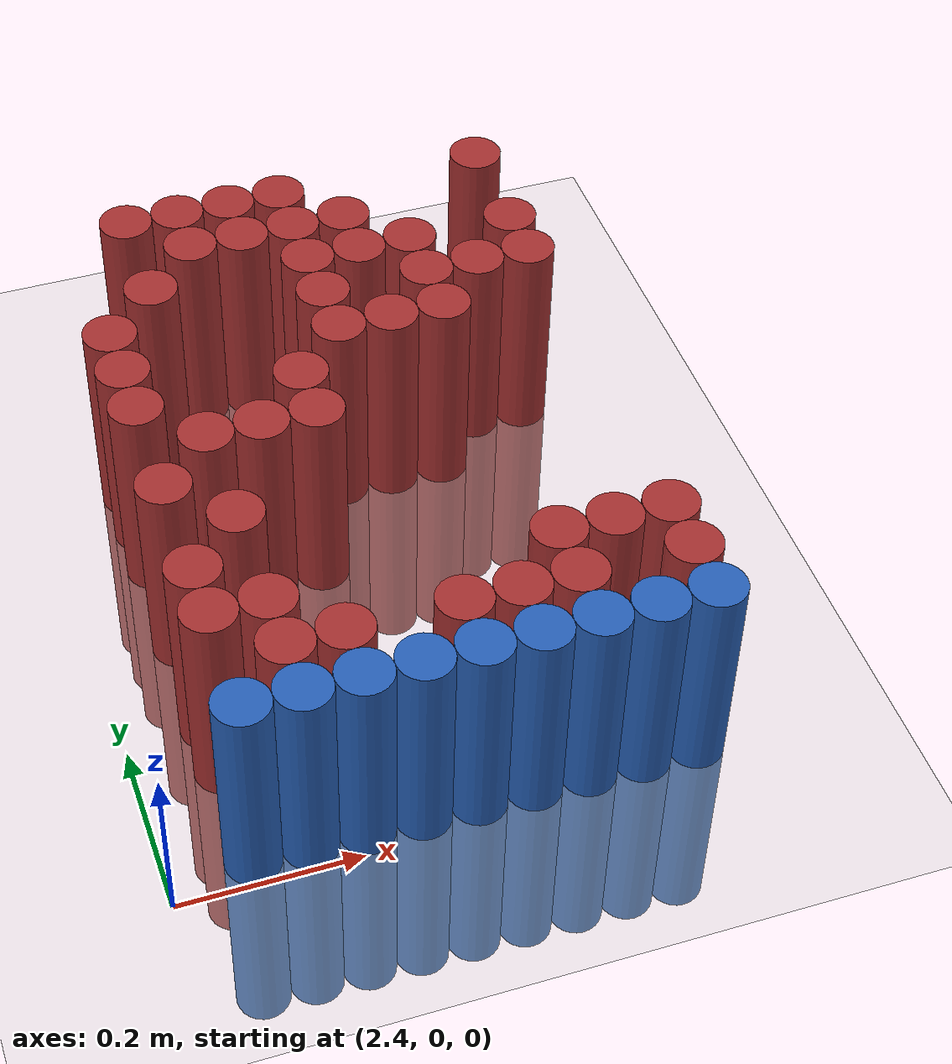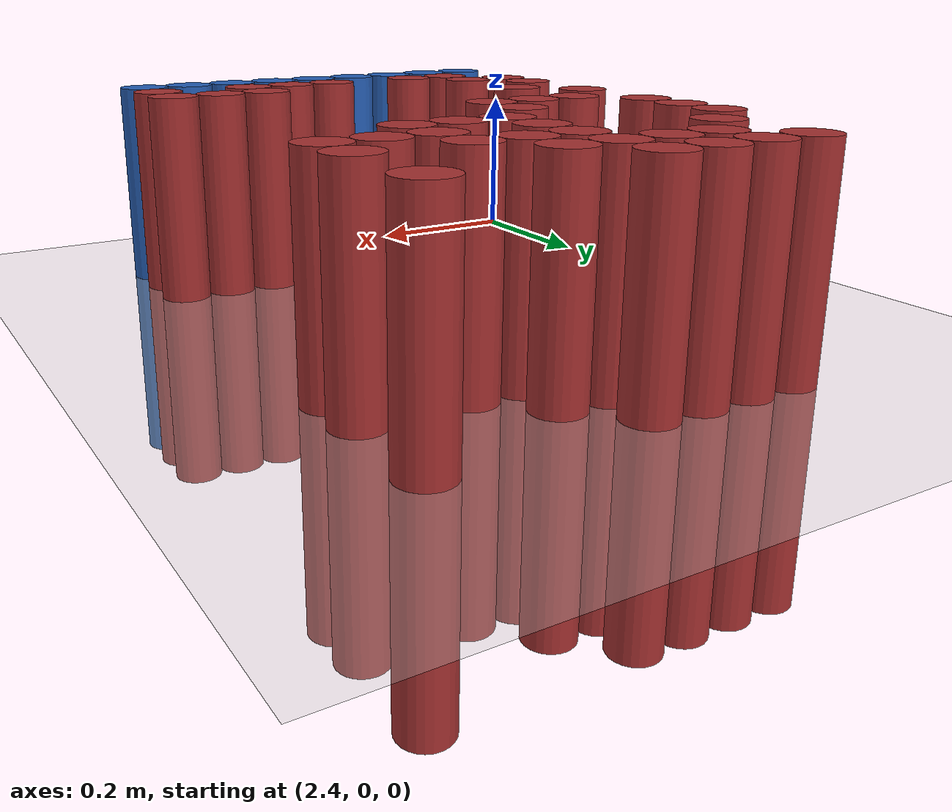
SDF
<sdf version="1.6">
 <world name="default">
  <model name="ground_plane">
   <static>1</static>
   <link name="link">
    <collision name="collision">
     <geometry><plane><normal>0 0 1</normal><size>100 100</size></plane></geometry>
     <surface><friction><ode><mu>100</mu><mu2>50</mu2></ode></friction></surface>
    </collision>
    <visual name="visual">
     <cast_shadows>0</cast_shadows>
     <geometry><plane><normal>0 0 1</normal><size>100 100</size></plane></geometry>
     <material>
      <script><uri>file://media/materials/scripts/gazebo.material</uri><name>Gazebo/Grey</name></script>
     </material>
    </visual>
   </link>
  </model>
  <model name="unit_cylinder_212">
   <static>1</static>
   <pose>2.550000 0.750000 0.000000 0.000000 0.000000 0.000000</pose>
   <link name="link">
    <inertial>
     <mass>1</mass>
     <inertia><ixx>0.145833</ixx><ixy>0</ixy><ixz>0</ixz><iyy>0.145833</iyy><iyz>0</iyz><izz>0.125</izz></inertia>
    </inertial>
    <collision name="collision">
     <geometry><cylinder><radius>0.030000</radius><length>0.5</length></cylinder></geometry>
    </collision>
    <visual name="visual">
     <geometry><cylinder><radius>0.030000</radius><length>0.5</length></cylinder></geometry>
     <material>
      <ambient>0.648000 0.192000 0.192000 1</ambient>
      <diffuse>0.648000 0.192000 0.192000 1</diffuse>
     </material>
     <material>
      <script><name>Gazebo/Grey</name><uri>file://media/materials/scripts/gazebo.material</uri></script>
     </material>
    </visual>
   </link>
  </model>
  <model name="unit_cylinder_213">
   <static>1</static>
   <pose>2.610000 0.750000 0.000000 0.000000 0.000000 0.000000</pose>
   <link name="link">
    <inertial>
     <mass>1</mass>
     <inertia><ixx>0.145833</ixx><ixy>0</ixy><ixz>0</ixz><iyy>0.145833</iyy><iyz>0</iyz><izz>0.125</izz></inertia>
    </inertial>
    <collision name="collision">
     <geometry><cylinder><radius>0.030000</radius><length>0.5</length></cylinder></geometry>
    </collision>
    <visual name="visual">
     <geometry><cylinder><radius>0.030000</radius><length>0.5</length></cylinder></geometry>
     <material>
      <ambient>0.648000 0.192000 0.192000 1</ambient>
      <diffuse>0.648000 0.192000 0.192000 1</diffuse>
     </material>
     <material>
      <script><name>Gazebo/Grey</name><uri>file://media/materials/scripts/gazebo.material</uri></script>
     </material>
    </visual>
   </link>
  </model>
  <model name="unit_cylinder_214">
   <static>1</static>
   <pose>2.670000 0.750000 0.000000 0.000000 0.000000 0.000000</pose>
   <link name="link">
    <inertial>
     <mass>1</mass>
     <inertia><ixx>0.145833</ixx><ixy>0</ixy><ixz>0</ixz><iyy>0.145833</iyy><iyz>0</iyz><izz>0.125</izz></inertia>
    </inertial>
    <collision name="collision">
     <geometry><cylinder><radius>0.030000</radius><length>0.5</length></cylinder></geometry>
    </collision>
    <visual name="visual">
     <geometry><cylinder><radius>0.030000</radius><length>0.5</length></cylinder></geometry>
     <material>
      <ambient>0.648000 0.192000 0.192000 1</ambient>
      <diffuse>0.648000 0.192000 0.192000 1</diffuse>
     </material>
     <material>
      <script><name>Gazebo/Grey</name><uri>file://media/materials/scripts/gazebo.material</uri></script>
     </material>
    </visual>
   </link>
  </model>
  <model name="unit_cylinder_215">
   <static>1</static>
   <pose>2.730000 0.750000 0.000000 0.000000 0.000000 0.000000</pose>
   <link name="link">
    <inertial>
     <mass>1</mass>
     <inertia><ixx>0.145833</ixx><ixy>0</ixy><ixz>0</ixz><iyy>0.145833</iyy><iyz>0</iyz><izz>0.125</izz></inertia>
    </inertial>
    <collision name="collision">
     <geometry><cylinder><radius>0.030000</radius><length>0.5</length></cylinder></geometry>
    </collision>
    <visual name="visual">
     <geometry><cylinder><radius>0.030000</radius><length>0.5</length></cylinder></geometry>
     <material>
      <ambient>0.648000 0.192000 0.192000 1</ambient>
      <diffuse>0.648000 0.192000 0.192000 1</diffuse>
     </material>
     <material>
      <script><name>Gazebo/Grey</name><uri>file://media/materials/scripts/gazebo.material</uri></script>
     </material>
    </visual>
   </link>
  </model>
  <model name="unit_cylinder_216">
   <static>1</static>
   <pose>2.970000 0.750000 0.000000 0.000000 0.000000 0.000000</pose>
   <link name="link">
    <inertial>
     <mass>1</mass>
     <inertia><ixx>0.145833</ixx><ixy>0</ixy><ixz>0</ixz><iyy>0.145833</iyy><iyz>0</iyz><izz>0.125</izz></inertia>
    </inertial>
    <collision name="collision">
     <geometry><cylinder><radius>0.030000</radius><length>0.5</length></cylinder></geometry>
    </collision>
    <visual name="visual">
     <geometry><cylinder><radius>0.030000</radius><length>0.5</length></cylinder></geometry>
     <material>
      <ambient>0.648000 0.192000 0.192000 1</ambient>
      <diffuse>0.648000 0.192000 0.192000 1</diffuse>
     </material>
     <material>
      <script><name>Gazebo/Grey</name><uri>file://media/materials/scripts/gazebo.material</uri></script>
     </material>
    </visual>
   </link>
  </model>
  <model name="unit_cylinder_224">
   <static>1</static>
   <pose>2.610000 0.690000 0.000000 0.000000 0.000000 0.000000</pose>
   <link name="link">
    <inertial>
     <mass>1</mass>
     <inertia><ixx>0.145833</ixx><ixy>0</ixy><ixz>0</ixz><iyy>0.145833</iyy><iyz>0</iyz><izz>0.125</izz></inertia>
    </inertial>
    <collision name="collision">
     <geometry><cylinder><radius>0.030000</radius><length>0.5</length></cylinder></geometry>
    </collision>
    <visual name="visual">
     <geometry><cylinder><radius>0.030000</radius><length>0.5</length></cylinder></geometry>
     <material>
      <ambient>0.648000 0.192000 0.192000 1</ambient>
      <diffuse>0.648000 0.192000 0.192000 1</diffuse>
     </material>
     <material>
      <script><name>Gazebo/Grey</name><uri>file://media/materials/scripts/gazebo.material</uri></script>
     </material>
    </visual>
   </link>
  </model>
  <model name="unit_cylinder_225">
   <static>1</static>
   <pose>2.670000 0.690000 0.000000 0.000000 0.000000 0.000000</pose>
   <link name="link">
    <inertial>
     <mass>1</mass>
     <inertia><ixx>0.145833</ixx><ixy>0</ixy><ixz>0</ixz><iyy>0.145833</iyy><iyz>0</iyz><izz>0.125</izz></inertia>
    </inertial>
    <collision name="collision">
     <geometry><cylinder><radius>0.030000</radius><length>0.5</length></cylinder></geometry>
    </collision>
    <visual name="visual">
     <geometry><cylinder><radius>0.030000</radius><length>0.5</length></cylinder></geometry>
     <material>
      <ambient>0.648000 0.192000 0.192000 1</ambient>
      <diffuse>0.648000 0.192000 0.192000 1</diffuse>
     </material>
     <material>
      <script><name>Gazebo/Grey</name><uri>file://media/materials/scripts/gazebo.material</uri></script>
     </material>
    </visual>
   </link>
  </model>
  <model name="unit_cylinder_226">
   <static>1</static>
   <pose>2.730000 0.690000 0.000000 0.000000 0.000000 0.000000</pose>
   <link name="link">
    <inertial>
     <mass>1</mass>
     <inertia><ixx>0.145833</ixx><ixy>0</ixy><ixz>0</ixz><iyy>0.145833</iyy><iyz>0</iyz><izz>0.125</izz></inertia>
    </inertial>
    <collision name="collision">
     <geometry><cylinder><radius>0.030000</radius><length>0.5</length></cylinder></geometry>
    </collision>
    <visual name="visual">
     <geometry><cylinder><radius>0.030000</radius><length>0.5</length></cylinder></geometry>
     <material>
      <ambient>0.648000 0.192000 0.192000 1</ambient>
      <diffuse>0.648000 0.192000 0.192000 1</diffuse>
     </material>
     <material>
      <script><name>Gazebo/Grey</name><uri>file://media/materials/scripts/gazebo.material</uri></script>
     </material>
    </visual>
   </link>
  </model>
  <model name="unit_cylinder_227">
   <static>1</static>
   <pose>2.790000 0.690000 0.000000 0.000000 0.000000 0.000000</pose>
   <link name="link">
    <inertial>
     <mass>1</mass>
     <inertia><ixx>0.145833</ixx><ixy>0</ixy><ixz>0</ixz><iyy>0.145833</iyy><iyz>0</iyz><izz>0.125</izz></inertia>
    </inertial>
    <collision name="collision">
     <geometry><cylinder><radius>0.030000</radius><length>0.5</length></cylinder></geometry>
    </collision>
    <visual name="visual">
     <geometry><cylinder><radius>0.030000</radius><length>0.5</length></cylinder></geometry>
     <material>
      <ambient>0.648000 0.192000 0.192000 1</ambient>
      <diffuse>0.648000 0.192000 0.192000 1</diffuse>
     </material>
     <material>
      <script><name>Gazebo/Grey</name><uri>file://media/materials/scripts/gazebo.material</uri></script>
     </material>
    </visual>
   </link>
  </model>
  <model name="unit_cylinder_236">
   <static>1</static>
   <pose>2.550000 0.630000 0.000000 0.000000 0.000000 0.000000</pose>
   <link name="link">
    <inertial>
     <mass>1</mass>
     <inertia><ixx>0.145833</ixx><ixy>0</ixy><ixz>0</ixz><iyy>0.145833</iyy><iyz>0</iyz><izz>0.125</izz></inertia>
    </inertial>
    <collision name="collision">
     <geometry><cylinder><radius>0.030000</radius><length>0.5</length></cylinder></geometry>
    </collision>
    <visual name="visual">
     <geometry><cylinder><radius>0.030000</radius><length>0.5</length></cylinder></geometry>
     <material>
      <ambient>0.648000 0.192000 0.192000 1</ambient>
      <diffuse>0.648000 0.192000 0.192000 1</diffuse>
     </material>
     <material>
      <script><name>Gazebo/Grey</name><uri>file://media/materials/scripts/gazebo.material</uri></script>
     </material>
    </visual>
   </link>
  </model>
  <model name="unit_cylinder_237">
   <static>1</static>
   <pose>2.730000 0.630000 0.000000 0.000000 0.000000 0.000000</pose>
   <link name="link">
    <inertial>
     <mass>1</mass>
     <inertia><ixx>0.145833</ixx><ixy>0</ixy><ixz>0</ixz><iyy>0.145833</iyy><iyz>0</iyz><izz>0.125</izz></inertia>
    </inertial>
    <collision name="collision">
     <geometry><cylinder><radius>0.030000</radius><length>0.5</length></cylinder></geometry>
    </collision>
    <visual name="visual">
     <geometry><cylinder><radius>0.030000</radius><length>0.5</length></cylinder></geometry>
     <material>
      <ambient>0.648000 0.192000 0.192000 1</ambient>
      <diffuse>0.648000 0.192000 0.192000 1</diffuse>
     </material>
     <material>
      <script><name>Gazebo/Grey</name><uri>file://media/materials/scripts/gazebo.material</uri></script>
     </material>
    </visual>
   </link>
  </model>
  <model name="unit_cylinder_238">
   <static>1</static>
   <pose>2.790000 0.630000 0.000000 0.000000 0.000000 0.000000</pose>
   <link name="link">
    <inertial>
     <mass>1</mass>
     <inertia><ixx>0.145833</ixx><ixy>0</ixy><ixz>0</ixz><iyy>0.145833</iyy><iyz>0</iyz><izz>0.125</izz></inertia>
    </inertial>
    <collision name="collision">
     <geometry><cylinder><radius>0.030000</radius><length>0.5</length></cylinder></geometry>
    </collision>
    <visual name="visual">
     <geometry><cylinder><radius>0.030000</radius><length>0.5</length></cylinder></geometry>
     <material>
      <ambient>0.648000 0.192000 0.192000 1</ambient>
      <diffuse>0.648000 0.192000 0.192000 1</diffuse>
     </material>
     <material>
      <script><name>Gazebo/Grey</name><uri>file://media/materials/scripts/gazebo.material</uri></script>
     </material>
    </visual>
   </link>
  </model>
  <model name="unit_cylinder_239">
   <static>1</static>
   <pose>2.850000 0.630000 0.000000 0.000000 0.000000 0.000000</pose>
   <link name="link">
    <inertial>
     <mass>1</mass>
     <inertia><ixx>0.145833</ixx><ixy>0</ixy><ixz>0</ixz><iyy>0.145833</iyy><iyz>0</iyz><izz>0.125</izz></inertia>
    </inertial>
    <collision name="collision">
     <geometry><cylinder><radius>0.030000</radius><length>0.5</length></cylinder></geometry>
    </collision>
    <visual name="visual">
     <geometry><cylinder><radius>0.030000</radius><length>0.5</length></cylinder></geometry>
     <material>
      <ambient>0.648000 0.192000 0.192000 1</ambient>
      <diffuse>0.648000 0.192000 0.192000 1</diffuse>
     </material>
     <material>
      <script><name>Gazebo/Grey</name><uri>file://media/materials/scripts/gazebo.material</uri></script>
     </material>
    </visual>
   </link>
  </model>
  <model name="unit_cylinder_240">
   <static>1</static>
   <pose>2.970000 0.630000 0.000000 0.000000 0.000000 0.000000</pose>
   <link name="link">
    <inertial>
     <mass>1</mass>
     <inertia><ixx>0.145833</ixx><ixy>0</ixy><ixz>0</ixz><iyy>0.145833</iyy><iyz>0</iyz><izz>0.125</izz></inertia>
    </inertial>
    <collision name="collision">
     <geometry><cylinder><radius>0.030000</radius><length>0.5</length></cylinder></geometry>
    </collision>
    <visual name="visual">
     <geometry><cylinder><radius>0.030000</radius><length>0.5</length></cylinder></geometry>
     <material>
      <ambient>0.648000 0.192000 0.192000 1</ambient>
      <diffuse>0.648000 0.192000 0.192000 1</diffuse>
     </material>
     <material>
      <script><name>Gazebo/Grey</name><uri>file://media/materials/scripts/gazebo.material</uri></script>
     </material>
    </visual>
   </link>
  </model>
  <model name="unit_cylinder_246">
   <static>1</static>
   <pose>2.490000 0.570000 0.000000 0.000000 0.000000 0.000000</pose>
   <link name="link">
    <inertial>
     <mass>1</mass>
     <inertia><ixx>0.145833</ixx><ixy>0</ixy><ixz>0</ixz><iyy>0.145833</iyy><iyz>0</iyz><izz>0.125</izz></inertia>
    </inertial>
    <collision name="collision">
     <geometry><cylinder><radius>0.030000</radius><length>0.5</length></cylinder></geometry>
    </collision>
    <visual name="visual">
     <geometry><cylinder><radius>0.030000</radius><length>0.5</length></cylinder></geometry>
     <material>
      <ambient>0.648000 0.192000 0.192000 1</ambient>
      <diffuse>0.648000 0.192000 0.192000 1</diffuse>
     </material>
     <material>
      <script><name>Gazebo/Grey</name><uri>file://media/materials/scripts/gazebo.material</uri></script>
     </material>
    </visual>
   </link>
  </model>
  <model name="unit_cylinder_247">
   <static>1</static>
   <pose>2.730000 0.570000 0.000000 0.000000 0.000000 0.000000</pose>
   <link name="link">
    <inertial>
     <mass>1</mass>
     <inertia><ixx>0.145833</ixx><ixy>0</ixy><ixz>0</ixz><iyy>0.145833</iyy><iyz>0</iyz><izz>0.125</izz></inertia>
    </inertial>
    <collision name="collision">
     <geometry><cylinder><radius>0.030000</radius><length>0.5</length></cylinder></geometry>
    </collision>
    <visual name="visual">
     <geometry><cylinder><radius>0.030000</radius><length>0.5</length></cylinder></geometry>
     <material>
      <ambient>0.648000 0.192000 0.192000 1</ambient>
      <diffuse>0.648000 0.192000 0.192000 1</diffuse>
     </material>
     <material>
      <script><name>Gazebo/Grey</name><uri>file://media/materials/scripts/gazebo.material</uri></script>
     </material>
    </visual>
   </link>
  </model>
  <model name="unit_cylinder_248">
   <static>1</static>
   <pose>2.850000 0.570000 0.000000 0.000000 0.000000 0.000000</pose>
   <link name="link">
    <inertial>
     <mass>1</mass>
     <inertia><ixx>0.145833</ixx><ixy>0</ixy><ixz>0</ixz><iyy>0.145833</iyy><iyz>0</iyz><izz>0.125</izz></inertia>
    </inertial>
    <collision name="collision">
     <geometry><cylinder><radius>0.030000</radius><length>0.5</length></cylinder></geometry>
    </collision>
    <visual name="visual">
     <geometry><cylinder><radius>0.030000</radius><length>0.5</length></cylinder></geometry>
     <material>
      <ambient>0.648000 0.192000 0.192000 1</ambient>
      <diffuse>0.648000 0.192000 0.192000 1</diffuse>
     </material>
     <material>
      <script><name>Gazebo/Grey</name><uri>file://media/materials/scripts/gazebo.material</uri></script>
     </material>
    </visual>
   </link>
  </model>
  <model name="unit_cylinder_249">
   <static>1</static>
   <pose>2.910000 0.570000 0.000000 0.000000 0.000000 0.000000</pose>
   <link name="link">
    <inertial>
     <mass>1</mass>
     <inertia><ixx>0.145833</ixx><ixy>0</ixy><ixz>0</ixz><iyy>0.145833</iyy><iyz>0</iyz><izz>0.125</izz></inertia>
    </inertial>
    <collision name="collision">
     <geometry><cylinder><radius>0.030000</radius><length>0.5</length></cylinder></geometry>
    </collision>
    <visual name="visual">
     <geometry><cylinder><radius>0.030000</radius><length>0.5</length></cylinder></geometry>
     <material>
      <ambient>0.648000 0.192000 0.192000 1</ambient>
      <diffuse>0.648000 0.192000 0.192000 1</diffuse>
     </material>
     <material>
      <script><name>Gazebo/Grey</name><uri>file://media/materials/scripts/gazebo.material</uri></script>
     </material>
    </visual>
   </link>
  </model>
  <model name="unit_cylinder_250">
   <static>1</static>
   <pose>2.970000 0.570000 0.000000 0.000000 0.000000 0.000000</pose>
   <link name="link">
    <inertial>
     <mass>1</mass>
     <inertia><ixx>0.145833</ixx><ixy>0</ixy><ixz>0</ixz><iyy>0.145833</iyy><iyz>0</iyz><izz>0.125</izz></inertia>
    </inertial>
    <collision name="collision">
     <geometry><cylinder><radius>0.030000</radius><length>0.5</length></cylinder></geometry>
    </collision>
    <visual name="visual">
     <geometry><cylinder><radius>0.030000</radius><length>0.5</length></cylinder></geometry>
     <material>
      <ambient>0.648000 0.192000 0.192000 1</ambient>
      <diffuse>0.648000 0.192000 0.192000 1</diffuse>
     </material>
     <material>
      <script><name>Gazebo/Grey</name><uri>file://media/materials/scripts/gazebo.material</uri></script>
     </material>
    </visual>
   </link>
  </model>
  <model name="unit_cylinder_255">
   <static>1</static>
   <pose>2.490000 0.510000 0.000000 0.000000 0.000000 0.000000</pose>
   <link name="link">
    <inertial>
     <mass>1</mass>
     <inertia><ixx>0.145833</ixx><ixy>0</ixy><ixz>0</ixz><iyy>0.145833</iyy><iyz>0</iyz><izz>0.125</izz></inertia>
    </inertial>
    <collision name="collision">
     <geometry><cylinder><radius>0.030000</radius><length>0.5</length></cylinder></geometry>
    </collision>
    <visual name="visual">
     <geometry><cylinder><radius>0.030000</radius><length>0.5</length></cylinder></geometry>
     <material>
      <ambient>0.648000 0.192000 0.192000 1</ambient>
      <diffuse>0.648000 0.192000 0.192000 1</diffuse>
     </material>
     <material>
      <script><name>Gazebo/Grey</name><uri>file://media/materials/scripts/gazebo.material</uri></script>
     </material>
    </visual>
   </link>
  </model>
  <model name="unit_cylinder_256">
   <static>1</static>
   <pose>2.730000 0.510000 0.000000 0.000000 0.000000 0.000000</pose>
   <link name="link">
    <inertial>
     <mass>1</mass>
     <inertia><ixx>0.145833</ixx><ixy>0</ixy><ixz>0</ixz><iyy>0.145833</iyy><iyz>0</iyz><izz>0.125</izz></inertia>
    </inertial>
    <collision name="collision">
     <geometry><cylinder><radius>0.030000</radius><length>0.5</length></cylinder></geometry>
    </collision>
    <visual name="visual">
     <geometry><cylinder><radius>0.030000</radius><length>0.5</length></cylinder></geometry>
     <material>
      <ambient>0.648000 0.192000 0.192000 1</ambient>
      <diffuse>0.648000 0.192000 0.192000 1</diffuse>
     </material>
     <material>
      <script><name>Gazebo/Grey</name><uri>file://media/materials/scripts/gazebo.material</uri></script>
     </material>
    </visual>
   </link>
  </model>
  <model name="unit_cylinder_257">
   <static>1</static>
   <pose>2.790000 0.510000 0.000000 0.000000 0.000000 0.000000</pose>
   <link name="link">
    <inertial>
     <mass>1</mass>
     <inertia><ixx>0.145833</ixx><ixy>0</ixy><ixz>0</ixz><iyy>0.145833</iyy><iyz>0</iyz><izz>0.125</izz></inertia>
    </inertial>
    <collision name="collision">
     <geometry><cylinder><radius>0.030000</radius><length>0.5</length></cylinder></geometry>
    </collision>
    <visual name="visual">
     <geometry><cylinder><radius>0.030000</radius><length>0.5</length></cylinder></geometry>
     <material>
      <ambient>0.648000 0.192000 0.192000 1</ambient>
      <diffuse>0.648000 0.192000 0.192000 1</diffuse>
     </material>
     <material>
      <script><name>Gazebo/Grey</name><uri>file://media/materials/scripts/gazebo.material</uri></script>
     </material>
    </visual>
   </link>
  </model>
  <model name="unit_cylinder_258">
   <static>1</static>
   <pose>2.850000 0.510000 0.000000 0.000000 0.000000 0.000000</pose>
   <link name="link">
    <inertial>
     <mass>1</mass>
     <inertia><ixx>0.145833</ixx><ixy>0</ixy><ixz>0</ixz><iyy>0.145833</iyy><iyz>0</iyz><izz>0.125</izz></inertia>
    </inertial>
    <collision name="collision">
     <geometry><cylinder><radius>0.030000</radius><length>0.5</length></cylinder></geometry>
    </collision>
    <visual name="visual">
     <geometry><cylinder><radius>0.030000</radius><length>0.5</length></cylinder></geometry>
     <material>
      <ambient>0.648000 0.192000 0.192000 1</ambient>
      <diffuse>0.648000 0.192000 0.192000 1</diffuse>
     </material>
     <material>
      <script><name>Gazebo/Grey</name><uri>file://media/materials/scripts/gazebo.material</uri></script>
     </material>
    </visual>
   </link>
  </model>
  <model name="unit_cylinder_266">
   <static>1</static>
   <pose>2.490000 0.450000 0.000000 0.000000 0.000000 0.000000</pose>
   <link name="link">
    <inertial>
     <mass>1</mass>
     <inertia><ixx>0.145833</ixx><ixy>0</ixy><ixz>0</ixz><iyy>0.145833</iyy><iyz>0</iyz><izz>0.125</izz></inertia>
    </inertial>
    <collision name="collision">
     <geometry><cylinder><radius>0.030000</radius><length>0.5</length></cylinder></geometry>
    </collision>
    <visual name="visual">
     <geometry><cylinder><radius>0.030000</radius><length>0.5</length></cylinder></geometry>
     <material>
      <ambient>0.648000 0.192000 0.192000 1</ambient>
      <diffuse>0.648000 0.192000 0.192000 1</diffuse>
     </material>
     <material>
      <script><name>Gazebo/Grey</name><uri>file://media/materials/scripts/gazebo.material</uri></script>
     </material>
    </visual>
   </link>
  </model>
  <model name="unit_cylinder_267">
   <static>1</static>
   <pose>2.670000 0.450000 0.000000 0.000000 0.000000 0.000000</pose>
   <link name="link">
    <inertial>
     <mass>1</mass>
     <inertia><ixx>0.145833</ixx><ixy>0</ixy><ixz>0</ixz><iyy>0.145833</iyy><iyz>0</iyz><izz>0.125</izz></inertia>
    </inertial>
    <collision name="collision">
     <geometry><cylinder><radius>0.030000</radius><length>0.5</length></cylinder></geometry>
    </collision>
    <visual name="visual">
     <geometry><cylinder><radius>0.030000</radius><length>0.5</length></cylinder></geometry>
     <material>
      <ambient>0.648000 0.192000 0.192000 1</ambient>
      <diffuse>0.648000 0.192000 0.192000 1</diffuse>
     </material>
     <material>
      <script><name>Gazebo/Grey</name><uri>file://media/materials/scripts/gazebo.material</uri></script>
     </material>
    </visual>
   </link>
  </model>
  <model name="unit_cylinder_275">
   <static>1</static>
   <pose>2.550000 0.390000 0.000000 0.000000 0.000000 0.000000</pose>
   <link name="link">
    <inertial>
     <mass>1</mass>
     <inertia><ixx>0.145833</ixx><ixy>0</ixy><ixz>0</ixz><iyy>0.145833</iyy><iyz>0</iyz><izz>0.125</izz></inertia>
    </inertial>
    <collision name="collision">
     <geometry><cylinder><radius>0.030000</radius><length>0.5</length></cylinder></geometry>
    </collision>
    <visual name="visual">
     <geometry><cylinder><radius>0.030000</radius><length>0.5</length></cylinder></geometry>
     <material>
      <ambient>0.648000 0.192000 0.192000 1</ambient>
      <diffuse>0.648000 0.192000 0.192000 1</diffuse>
     </material>
     <material>
      <script><name>Gazebo/Grey</name><uri>file://media/materials/scripts/gazebo.material</uri></script>
     </material>
    </visual>
   </link>
  </model>
  <model name="unit_cylinder_276">
   <static>1</static>
   <pose>2.610000 0.390000 0.000000 0.000000 0.000000 0.000000</pose>
   <link name="link">
    <inertial>
     <mass>1</mass>
     <inertia><ixx>0.145833</ixx><ixy>0</ixy><ixz>0</ixz><iyy>0.145833</iyy><iyz>0</iyz><izz>0.125</izz></inertia>
    </inertial>
    <collision name="collision">
     <geometry><cylinder><radius>0.030000</radius><length>0.5</length></cylinder></geometry>
    </collision>
    <visual name="visual">
     <geometry><cylinder><radius>0.030000</radius><length>0.5</length></cylinder></geometry>
     <material>
      <ambient>0.648000 0.192000 0.192000 1</ambient>
      <diffuse>0.648000 0.192000 0.192000 1</diffuse>
     </material>
     <material>
      <script><name>Gazebo/Grey</name><uri>file://media/materials/scripts/gazebo.material</uri></script>
     </material>
    </visual>
   </link>
  </model>
  <model name="unit_cylinder_277">
   <static>1</static>
   <pose>2.670000 0.390000 0.000000 0.000000 0.000000 0.000000</pose>
   <link name="link">
    <inertial>
     <mass>1</mass>
     <inertia><ixx>0.145833</ixx><ixy>0</ixy><ixz>0</ixz><iyy>0.145833</iyy><iyz>0</iyz><izz>0.125</izz></inertia>
    </inertial>
    <collision name="collision">
     <geometry><cylinder><radius>0.030000</radius><length>0.5</length></cylinder></geometry>
    </collision>
    <visual name="visual">
     <geometry><cylinder><radius>0.030000</radius><length>0.5</length></cylinder></geometry>
     <material>
      <ambient>0.648000 0.192000 0.192000 1</ambient>
      <diffuse>0.648000 0.192000 0.192000 1</diffuse>
     </material>
     <material>
      <script><name>Gazebo/Grey</name><uri>file://media/materials/scripts/gazebo.material</uri></script>
     </material>
    </visual>
   </link>
  </model>
  <model name="unit_cylinder_284">
   <static>1</static>
   <pose>2.490000 0.330000 0.000000 0.000000 0.000000 0.000000</pose>
   <link name="link">
    <inertial>
     <mass>1</mass>
     <inertia><ixx>0.145833</ixx><ixy>0</ixy><ixz>0</ixz><iyy>0.145833</iyy><iyz>0</iyz><izz>0.125</izz></inertia>
    </inertial>
    <collision name="collision">
     <geometry><cylinder><radius>0.030000</radius><length>0.5</length></cylinder></geometry>
    </collision>
    <visual name="visual">
     <geometry><cylinder><radius>0.030000</radius><length>0.5</length></cylinder></geometry>
     <material>
      <ambient>0.648000 0.192000 0.192000 1</ambient>
      <diffuse>0.648000 0.192000 0.192000 1</diffuse>
     </material>
     <material>
      <script><name>Gazebo/Grey</name><uri>file://media/materials/scripts/gazebo.material</uri></script>
     </material>
    </visual>
   </link>
  </model>
  <model name="unit_cylinder_292">
   <static>1</static>
   <pose>2.550000 0.270000 0.000000 0.000000 0.000000 0.000000</pose>
   <link name="link">
    <inertial>
     <mass>1</mass>
     <inertia><ixx>0.145833</ixx><ixy>0</ixy><ixz>0</ixz><iyy>0.145833</iyy><iyz>0</iyz><izz>0.125</izz></inertia>
    </inertial>
    <collision name="collision">
     <geometry><cylinder><radius>0.030000</radius><length>0.5</length></cylinder></geometry>
    </collision>
    <visual name="visual">
     <geometry><cylinder><radius>0.030000</radius><length>0.5</length></cylinder></geometry>
     <material>
      <ambient>0.648000 0.192000 0.192000 1</ambient>
      <diffuse>0.648000 0.192000 0.192000 1</diffuse>
     </material>
     <material>
      <script><name>Gazebo/Grey</name><uri>file://media/materials/scripts/gazebo.material</uri></script>
     </material>
    </visual>
   </link>
  </model>
  <model name="unit_cylinder_298">
   <static>1</static>
   <pose>2.490000 0.210000 0.000000 0.000000 0.000000 0.000000</pose>
   <link name="link">
    <inertial>
     <mass>1</mass>
     <inertia><ixx>0.145833</ixx><ixy>0</ixy><ixz>0</ixz><iyy>0.145833</iyy><iyz>0</iyz><izz>0.125</izz></inertia>
    </inertial>
    <collision name="collision">
     <geometry><cylinder><radius>0.030000</radius><length>0.5</length></cylinder></geometry>
    </collision>
    <visual name="visual">
     <geometry><cylinder><radius>0.030000</radius><length>0.5</length></cylinder></geometry>
     <material>
      <ambient>0.648000 0.192000 0.192000 1</ambient>
      <diffuse>0.648000 0.192000 0.192000 1</diffuse>
     </material>
     <material>
      <script><name>Gazebo/Grey</name><uri>file://media/materials/scripts/gazebo.material</uri></script>
     </material>
    </visual>
   </link>
  </model>
  <model name="unit_cylinder_305">
   <static>1</static>
   <pose>2.490000 0.150000 0.000000 0.000000 0.000000 0.000000</pose>
   <link name="link">
    <inertial>
     <mass>1</mass>
     <inertia><ixx>0.145833</ixx><ixy>0</ixy><ixz>0</ixz><iyy>0.145833</iyy><iyz>0</iyz><izz>0.125</izz></inertia>
    </inertial>
    <collision name="collision">
     <geometry><cylinder><radius>0.030000</radius><length>0.5</length></cylinder></geometry>
    </collision>
    <visual name="visual">
     <geometry><cylinder><radius>0.030000</radius><length>0.5</length></cylinder></geometry>
     <material>
      <ambient>0.648000 0.192000 0.192000 1</ambient>
      <diffuse>0.648000 0.192000 0.192000 1</diffuse>
     </material>
     <material>
      <script><name>Gazebo/Grey</name><uri>file://media/materials/scripts/gazebo.material</uri></script>
     </material>
    </visual>
   </link>
  </model>
  <model name="unit_cylinder_306">
   <static>1</static>
   <pose>2.550000 0.150000 0.000000 0.000000 0.000000 0.000000</pose>
   <link name="link">
    <inertial>
     <mass>1</mass>
     <inertia><ixx>0.145833</ixx><ixy>0</ixy><ixz>0</ixz><iyy>0.145833</iyy><iyz>0</iyz><izz>0.125</izz></inertia>
    </inertial>
    <collision name="collision">
     <geometry><cylinder><radius>0.030000</radius><length>0.5</length></cylinder></geometry>
    </collision>
    <visual name="visual">
     <geometry><cylinder><radius>0.030000</radius><length>0.5</length></cylinder></geometry>
     <material>
      <ambient>0.648000 0.192000 0.192000 1</ambient>
      <diffuse>0.648000 0.192000 0.192000 1</diffuse>
     </material>
     <material>
      <script><name>Gazebo/Grey</name><uri>file://media/materials/scripts/gazebo.material</uri></script>
     </material>
    </visual>
   </link>
  </model>
  <model name="unit_cylinder_307">
   <static>1</static>
   <pose>2.850000 0.150000 0.000000 0.000000 0.000000 0.000000</pose>
   <link name="link">
    <inertial>
     <mass>1</mass>
     <inertia><ixx>0.145833</ixx><ixy>0</ixy><ixz>0</ixz><iyy>0.145833</iyy><iyz>0</iyz><izz>0.125</izz></inertia>
    </inertial>
    <collision name="collision">
     <geometry><cylinder><radius>0.030000</radius><length>0.5</length></cylinder></geometry>
    </collision>
    <visual name="visual">
     <geometry><cylinder><radius>0.030000</radius><length>0.5</length></cylinder></geometry>
     <material>
      <ambient>0.648000 0.192000 0.192000 1</ambient>
      <diffuse>0.648000 0.192000 0.192000 1</diffuse>
     </material>
     <material>
      <script><name>Gazebo/Grey</name><uri>file://media/materials/scripts/gazebo.material</uri></script>
     </material>
    </visual>
   </link>
  </model>
  <model name="unit_cylinder_308">
   <static>1</static>
   <pose>2.910000 0.150000 0.000000 0.000000 0.000000 0.000000</pose>
   <link name="link">
    <inertial>
     <mass>1</mass>
     <inertia><ixx>0.145833</ixx><ixy>0</ixy><ixz>0</ixz><iyy>0.145833</iyy><iyz>0</iyz><izz>0.125</izz></inertia>
    </inertial>
    <collision name="collision">
     <geometry><cylinder><radius>0.030000</radius><length>0.5</length></cylinder></geometry>
    </collision>
    <visual name="visual">
     <geometry><cylinder><radius>0.030000</radius><length>0.5</length></cylinder></geometry>
     <material>
      <ambient>0.648000 0.192000 0.192000 1</ambient>
      <diffuse>0.648000 0.192000 0.192000 1</diffuse>
     </material>
     <material>
      <script><name>Gazebo/Grey</name><uri>file://media/materials/scripts/gazebo.material</uri></script>
     </material>
    </visual>
   </link>
  </model>
  <model name="unit_cylinder_309">
   <static>1</static>
   <pose>2.970000 0.150000 0.000000 0.000000 0.000000 0.000000</pose>
   <link name="link">
    <inertial>
     <mass>1</mass>
     <inertia><ixx>0.145833</ixx><ixy>0</ixy><ixz>0</ixz><iyy>0.145833</iyy><iyz>0</iyz><izz>0.125</izz></inertia>
    </inertial>
    <collision name="collision">
     <geometry><cylinder><radius>0.030000</radius><length>0.5</length></cylinder></geometry>
    </collision>
    <visual name="visual">
     <geometry><cylinder><radius>0.030000</radius><length>0.5</length></cylinder></geometry>
     <material>
      <ambient>0.648000 0.192000 0.192000 1</ambient>
      <diffuse>0.648000 0.192000 0.192000 1</diffuse>
     </material>
     <material>
      <script><name>Gazebo/Grey</name><uri>file://media/materials/scripts/gazebo.material</uri></script>
     </material>
    </visual>
   </link>
  </model>
  <model name="unit_cylinder_312">
   <static>1</static>
   <pose>2.550000 0.090000 0.000000 0.000000 0.000000 0.000000</pose>
   <link name="link">
    <inertial>
     <mass>1</mass>
     <inertia><ixx>0.145833</ixx><ixy>0</ixy><ixz>0</ixz><iyy>0.145833</iyy><iyz>0</iyz><izz>0.125</izz></inertia>
    </inertial>
    <collision name="collision">
     <geometry><cylinder><radius>0.030000</radius><length>0.5</length></cylinder></geometry>
    </collision>
    <visual name="visual">
     <geometry><cylinder><radius>0.030000</radius><length>0.5</length></cylinder></geometry>
     <material>
      <ambient>0.648000 0.192000 0.192000 1</ambient>
      <diffuse>0.648000 0.192000 0.192000 1</diffuse>
     </material>
     <material>
      <script><name>Gazebo/Grey</name><uri>file://media/materials/scripts/gazebo.material</uri></script>
     </material>
    </visual>
   </link>
  </model>
  <model name="unit_cylinder_313">
   <static>1</static>
   <pose>2.610000 0.090000 0.000000 0.000000 0.000000 0.000000</pose>
   <link name="link">
    <inertial>
     <mass>1</mass>
     <inertia><ixx>0.145833</ixx><ixy>0</ixy><ixz>0</ixz><iyy>0.145833</iyy><iyz>0</iyz><izz>0.125</izz></inertia>
    </inertial>
    <collision name="collision">
     <geometry><cylinder><radius>0.030000</radius><length>0.5</length></cylinder></geometry>
    </collision>
    <visual name="visual">
     <geometry><cylinder><radius>0.030000</radius><length>0.5</length></cylinder></geometry>
     <material>
      <ambient>0.648000 0.192000 0.192000 1</ambient>
      <diffuse>0.648000 0.192000 0.192000 1</diffuse>
     </material>
     <material>
      <script><name>Gazebo/Grey</name><uri>file://media/materials/scripts/gazebo.material</uri></script>
     </material>
    </visual>
   </link>
  </model>
  <model name="unit_cylinder_314">
   <static>1</static>
   <pose>2.730000 0.090000 0.000000 0.000000 0.000000 0.000000</pose>
   <link name="link">
    <inertial>
     <mass>1</mass>
     <inertia><ixx>0.145833</ixx><ixy>0</ixy><ixz>0</ixz><iyy>0.145833</iyy><iyz>0</iyz><izz>0.125</izz></inertia>
    </inertial>
    <collision name="collision">
     <geometry><cylinder><radius>0.030000</radius><length>0.5</length></cylinder></geometry>
    </collision>
    <visual name="visual">
     <geometry><cylinder><radius>0.030000</radius><length>0.5</length></cylinder></geometry>
     <material>
      <ambient>0.648000 0.192000 0.192000 1</ambient>
      <diffuse>0.648000 0.192000 0.192000 1</diffuse>
     </material>
     <material>
      <script><name>Gazebo/Grey</name><uri>file://media/materials/scripts/gazebo.material</uri></script>
     </material>
    </visual>
   </link>
  </model>
  <model name="unit_cylinder_315">
   <static>1</static>
   <pose>2.790000 0.090000 0.000000 0.000000 0.000000 0.000000</pose>
   <link name="link">
    <inertial>
     <mass>1</mass>
     <inertia><ixx>0.145833</ixx><ixy>0</ixy><ixz>0</ixz><iyy>0.145833</iyy><iyz>0</iyz><izz>0.125</izz></inertia>
    </inertial>
    <collision name="collision">
     <geometry><cylinder><radius>0.030000</radius><length>0.5</length></cylinder></geometry>
    </collision>
    <visual name="visual">
     <geometry><cylinder><radius>0.030000</radius><length>0.5</length></cylinder></geometry>
     <material>
      <ambient>0.648000 0.192000 0.192000 1</ambient>
      <diffuse>0.648000 0.192000 0.192000 1</diffuse>
     </material>
     <material>
      <script><name>Gazebo/Grey</name><uri>file://media/materials/scripts/gazebo.material</uri></script>
     </material>
    </visual>
   </link>
  </model>
  <model name="unit_cylinder_316">
   <static>1</static>
   <pose>2.850000 0.090000 0.000000 0.000000 0.000000 0.000000</pose>
   <link name="link">
    <inertial>
     <mass>1</mass>
     <inertia><ixx>0.145833</ixx><ixy>0</ixy><ixz>0</ixz><iyy>0.145833</iyy><iyz>0</iyz><izz>0.125</izz></inertia>
    </inertial>
    <collision name="collision">
     <geometry><cylinder><radius>0.030000</radius><length>0.5</length></cylinder></geometry>
    </collision>
    <visual name="visual">
     <geometry><cylinder><radius>0.030000</radius><length>0.5</length></cylinder></geometry>
     <material>
      <ambient>0.648000 0.192000 0.192000 1</ambient>
      <diffuse>0.648000 0.192000 0.192000 1</diffuse>
     </material>
     <material>
      <script><name>Gazebo/Grey</name><uri>file://media/materials/scripts/gazebo.material</uri></script>
     </material>
    </visual>
   </link>
  </model>
  <model name="unit_cylinder_317">
   <static>1</static>
   <pose>2.970000 0.090000 0.000000 0.000000 0.000000 0.000000</pose>
   <link name="link">
    <inertial>
     <mass>1</mass>
     <inertia><ixx>0.145833</ixx><ixy>0</ixy><ixz>0</ixz><iyy>0.145833</iyy><iyz>0</iyz><izz>0.125</izz></inertia>
    </inertial>
    <collision name="collision">
     <geometry><cylinder><radius>0.030000</radius><length>0.5</length></cylinder></geometry>
    </collision>
    <visual name="visual">
     <geometry><cylinder><radius>0.030000</radius><length>0.5</length></cylinder></geometry>
     <material>
      <ambient>0.648000 0.192000 0.192000 1</ambient>
      <diffuse>0.648000 0.192000 0.192000 1</diffuse>
     </material>
     <material>
      <script><name>Gazebo/Grey</name><uri>file://media/materials/scripts/gazebo.material</uri></script>
     </material>
    </visual>
   </link>
  </model>
  <model name="unit_cylinder_335">
   <static>1</static>
   <pose>2.490000 0.030000 0.000000 0.000000 0.000000 0.000000</pose>
   <link name="link">
    <inertial>
     <mass>1</mass>
     <inertia><ixx>0.145833</ixx><ixy>0</ixy><ixz>0</ixz><iyy>0.145833</iyy><iyz>0</iyz><izz>0.125</izz></inertia>
    </inertial>
    <collision name="collision">
     <geometry><cylinder><radius>0.030000</radius><length>0.5</length></cylinder></geometry>
    </collision>
    <visual name="visual">
     <geometry><cylinder><radius>0.030000</radius><length>0.5</length></cylinder></geometry>
     <material>
      <ambient>0.152000 0.379000 0.720000 1</ambient>
      <diffuse>0.152000 0.379000 0.720000 1</diffuse>
     </material>
     <material>
      <script><name>Gazebo/Grey</name><uri>file://media/materials/scripts/gazebo.material</uri></script>
     </material>
    </visual>
   </link>
  </model>
  <model name="unit_cylinder_336">
   <static>1</static>
   <pose>2.550000 0.030000 0.000000 0.000000 0.000000 0.000000</pose>
   <link name="link">
    <inertial>
     <mass>1</mass>
     <inertia><ixx>0.145833</ixx><ixy>0</ixy><ixz>0</ixz><iyy>0.145833</iyy><iyz>0</iyz><izz>0.125</izz></inertia>
    </inertial>
    <collision name="collision">
     <geometry><cylinder><radius>0.030000</radius><length>0.5</length></cylinder></geometry>
    </collision>
    <visual name="visual">
     <geometry><cylinder><radius>0.030000</radius><length>0.5</length></cylinder></geometry>
     <material>
      <ambient>0.152000 0.379000 0.720000 1</ambient>
      <diffuse>0.152000 0.379000 0.720000 1</diffuse>
     </material>
     <material>
      <script><name>Gazebo/Grey</name><uri>file://media/materials/scripts/gazebo.material</uri></script>
     </material>
    </visual>
   </link>
  </model>
  <model name="unit_cylinder_337">
   <static>1</static>
   <pose>2.610000 0.030000 0.000000 0.000000 0.000000 0.000000</pose>
   <link name="link">
    <inertial>
     <mass>1</mass>
     <inertia><ixx>0.145833</ixx><ixy>0</ixy><ixz>0</ixz><iyy>0.145833</iyy><iyz>0</iyz><izz>0.125</izz></inertia>
    </inertial>
    <collision name="collision">
     <geometry><cylinder><radius>0.030000</radius><length>0.5</length></cylinder></geometry>
    </collision>
    <visual name="visual">
     <geometry><cylinder><radius>0.030000</radius><length>0.5</length></cylinder></geometry>
     <material>
      <ambient>0.152000 0.379000 0.720000 1</ambient>
      <diffuse>0.152000 0.379000 0.720000 1</diffuse>
     </material>
     <material>
      <script><name>Gazebo/Grey</name><uri>file://media/materials/scripts/gazebo.material</uri></script>
     </material>
    </visual>
   </link>
  </model>
  <model name="unit_cylinder_338">
   <static>1</static>
   <pose>2.670000 0.030000 0.000000 0.000000 0.000000 0.000000</pose>
   <link name="link">
    <inertial>
     <mass>1</mass>
     <inertia><ixx>0.145833</ixx><ixy>0</ixy><ixz>0</ixz><iyy>0.145833</iyy><iyz>0</iyz><izz>0.125</izz></inertia>
    </inertial>
    <collision name="collision">
     <geometry><cylinder><radius>0.030000</radius><length>0.5</length></cylinder></geometry>
    </collision>
    <visual name="visual">
     <geometry><cylinder><radius>0.030000</radius><length>0.5</length></cylinder></geometry>
     <material>
      <ambient>0.152000 0.379000 0.720000 1</ambient>
      <diffuse>0.152000 0.379000 0.720000 1</diffuse>
     </material>
     <material>
      <script><name>Gazebo/Grey</name><uri>file://media/materials/scripts/gazebo.material</uri></script>
     </material>
    </visual>
   </link>
  </model>
  <model name="unit_cylinder_339">
   <static>1</static>
   <pose>2.730000 0.030000 0.000000 0.000000 0.000000 0.000000</pose>
   <link name="link">
    <inertial>
     <mass>1</mass>
     <inertia><ixx>0.145833</ixx><ixy>0</ixy><ixz>0</ixz><iyy>0.145833</iyy><iyz>0</iyz><izz>0.125</izz></inertia>
    </inertial>
    <collision name="collision">
     <geometry><cylinder><radius>0.030000</radius><length>0.5</length></cylinder></geometry>
    </collision>
    <visual name="visual">
     <geometry><cylinder><radius>0.030000</radius><length>0.5</length></cylinder></geometry>
     <material>
      <ambient>0.152000 0.379000 0.720000 1</ambient>
      <diffuse>0.152000 0.379000 0.720000 1</diffuse>
     </material>
     <material>
      <script><name>Gazebo/Grey</name><uri>file://media/materials/scripts/gazebo.material</uri></script>
     </material>
    </visual>
   </link>
  </model>
  <model name="unit_cylinder_340">
   <static>1</static>
   <pose>2.790000 0.030000 0.000000 0.000000 0.000000 0.000000</pose>
   <link name="link">
    <inertial>
     <mass>1</mass>
     <inertia><ixx>0.145833</ixx><ixy>0</ixy><ixz>0</ixz><iyy>0.145833</iyy><iyz>0</iyz><izz>0.125</izz></inertia>
    </inertial>
    <collision name="collision">
     <geometry><cylinder><radius>0.030000</radius><length>0.5</length></cylinder></geometry>
    </collision>
    <visual name="visual">
     <geometry><cylinder><radius>0.030000</radius><length>0.5</length></cylinder></geometry>
     <material>
      <ambient>0.152000 0.379000 0.720000 1</ambient>
      <diffuse>0.152000 0.379000 0.720000 1</diffuse>
     </material>
     <material>
      <script><name>Gazebo/Grey</name><uri>file://media/materials/scripts/gazebo.material</uri></script>
     </material>
    </visual>
   </link>
  </model>
  <model name="unit_cylinder_341">
   <static>1</static>
   <pose>2.850000 0.030000 0.000000 0.000000 0.000000 0.000000</pose>
   <link name="link">
    <inertial>
     <mass>1</mass>
     <inertia><ixx>0.145833</ixx><ixy>0</ixy><ixz>0</ixz><iyy>0.145833</iyy><iyz>0</iyz><izz>0.125</izz></inertia>
    </inertial>
    <collision name="collision">
     <geometry><cylinder><radius>0.030000</radius><length>0.5</length></cylinder></geometry>
    </collision>
    <visual name="visual">
     <geometry><cylinder><radius>0.030000</radius><length>0.5</length></cylinder></geometry>
     <material>
      <ambient>0.152000 0.379000 0.720000 1</ambient>
      <diffuse>0.152000 0.379000 0.720000 1</diffuse>
     </material>
     <material>
      <script><name>Gazebo/Grey</name><uri>file://media/materials/scripts/gazebo.material</uri></script>
     </material>
    </visual>
   </link>
  </model>
  <model name="unit_cylinder_342">
   <static>1</static>
   <pose>2.910000 0.030000 0.000000 0.000000 0.000000 0.000000</pose>
   <link name="link">
    <inertial>
     <mass>1</mass>
     <inertia><ixx>0.145833</ixx><ixy>0</ixy><ixz>0</ixz><iyy>0.145833</iyy><iyz>0</iyz><izz>0.125</izz></inertia>
    </inertial>
    <collision name="collision">
     <geometry><cylinder><radius>0.030000</radius><length>0.5</length></cylinder></geometry>
    </collision>
    <visual name="visual">
     <geometry><cylinder><radius>0.030000</radius><length>0.5</length></cylinder></geometry>
     <material>
      <ambient>0.152000 0.379000 0.720000 1</ambient>
      <diffuse>0.152000 0.379000 0.720000 1</diffuse>
     </material>
     <material>
      <script><name>Gazebo/Grey</name><uri>file://media/materials/scripts/gazebo.material</uri></script>
     </material>
    </visual>
   </link>
  </model>
  <model name="unit_cylinder_343">
   <static>1</static>
   <pose>2.970000 0.030000 0.000000 0.000000 0.000000 0.000000</pose>
   <link name="link">
    <inertial>
     <mass>1</mass>
     <inertia><ixx>0.145833</ixx><ixy>0</ixy><ixz>0</ixz><iyy>0.145833</iyy><iyz>0</iyz><izz>0.125</izz></inertia>
    </inertial>
    <collision name="collision">
     <geometry><cylinder><radius>0.030000</radius><length>0.5</length></cylinder></geometry>
    </collision>
    <visual name="visual">
     <geometry><cylinder><radius>0.030000</radius><length>0.5</length></cylinder></geometry>
     <material>
      <ambient>0.152000 0.379000 0.720000 1</ambient>
      <diffuse>0.152000 0.379000 0.720000 1</diffuse>
     </material>
     <material>
      <script><name>Gazebo/Grey</name><uri>file://media/materials/scripts/gazebo.material</uri></script>
     </material>
    </visual>
   </link>
  </model>
 </world>
</sdf>
